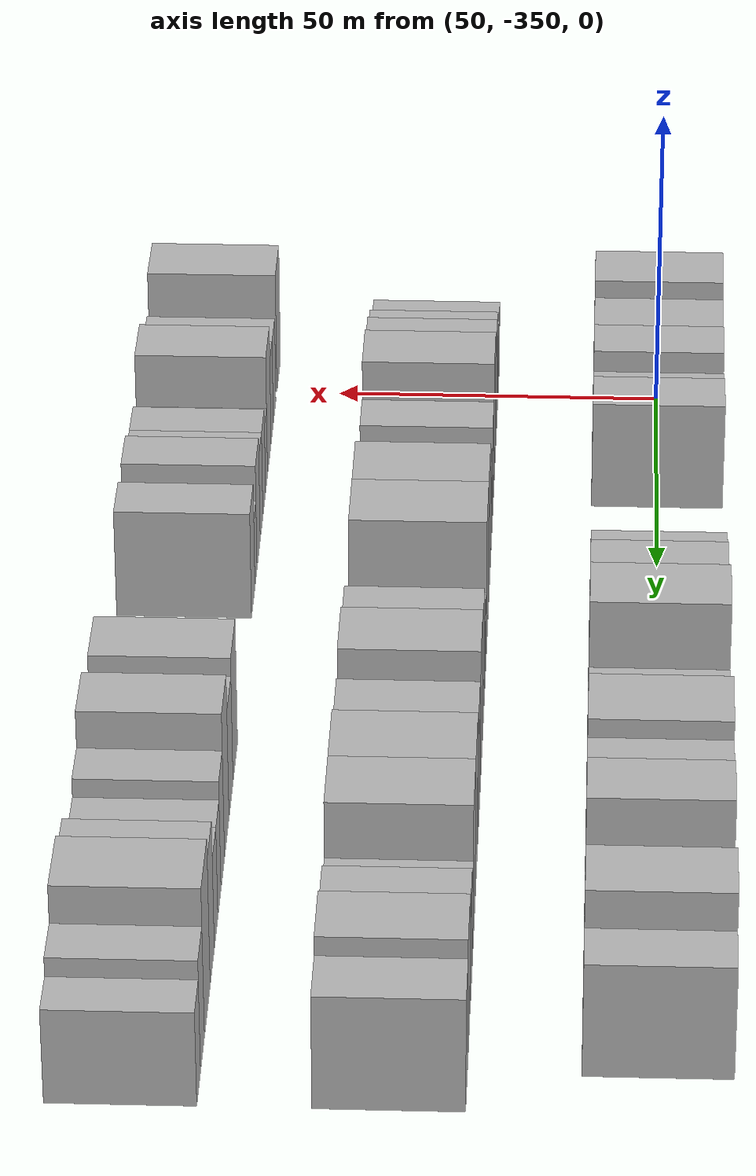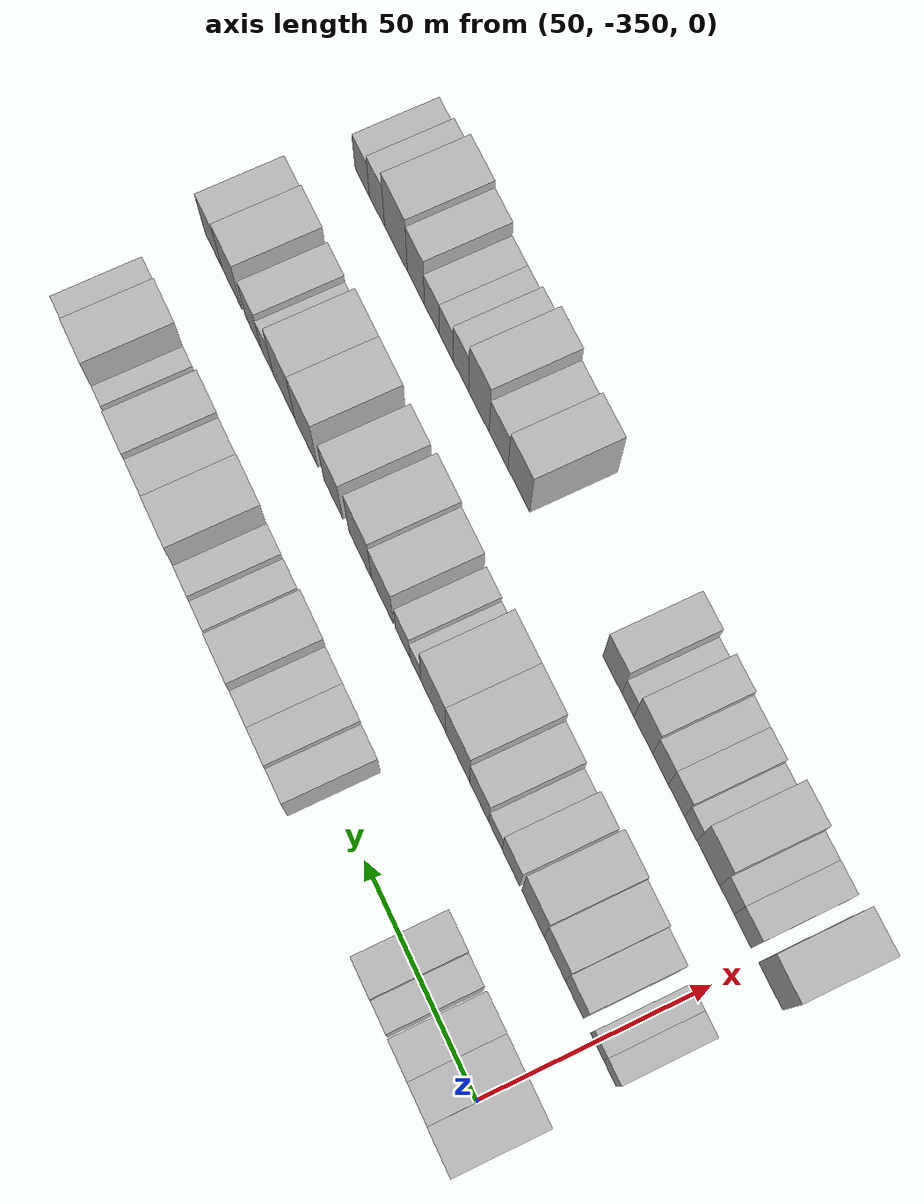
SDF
<sdf version="1.6">
 <world name="default">
  <model name="building_1">
   <static>1</static>
   <pose>50.0000 -355.1030 0 0.000000 0.000000 0.000000</pose>
   <link name="link">
    <pose>0 0 10.50 0 0 0</pose>
    <collision name="collision"><geometry><box><size>20.0000 9.7940 21.0000</size></box></geometry></collision>
    <visual name="visual">
     <cast_shadows>0</cast_shadows>
     <geometry><box><size>20.0000 9.7940 21.0000</size></box></geometry>
     <material>
      <script>
       <uri>model://HANNAS_wall/materials/scripts</uri>
       <uri>model://HANNAS_wall/materials/textures</uri>
       <name>vrc/HANNAS_wall</name>
      </script>
     </material>
    </visual>
   </link>
  </model>
  <model name="building_2">
   <static>1</static>
   <pose>50.0000 -345.9397 0 0.000000 0.000000 0.000000</pose>
   <link name="link">
    <pose>0 0 9.00 0 0 0</pose>
    <collision name="collision"><geometry><box><size>20.0000 8.5325 18.0000</size></box></geometry></collision>
    <visual name="visual">
     <cast_shadows>0</cast_shadows>
     <geometry><box><size>20.0000 8.5325 18.0000</size></box></geometry>
     <material>
      <script>
       <uri>model://HANNAS_wall/materials/scripts</uri>
       <uri>model://HANNAS_wall/materials/textures</uri>
       <name>vrc/HANNAS_wall</name>
      </script>
     </material>
    </visual>
   </link>
  </model>
  <model name="building_3">
   <static>1</static>
   <pose>50.0000 -337.5042 0 0.000000 0.000000 0.000000</pose>
   <link name="link">
    <pose>0 0 9.00 0 0 0</pose>
    <collision name="collision"><geometry><box><size>20.0000 8.3385 18.0000</size></box></geometry></collision>
    <visual name="visual">
     <cast_shadows>0</cast_shadows>
     <geometry><box><size>20.0000 8.3385 18.0000</size></box></geometry>
     <material>
      <script>
       <uri>model://HANNAS_wall/materials/scripts</uri>
       <uri>model://HANNAS_wall/materials/textures</uri>
       <name>vrc/HANNAS_wall</name>
      </script>
     </material>
    </visual>
   </link>
  </model>
  <model name="building_4">
   <static>1</static>
   <pose>50.0000 -328.9671 0 0.000000 0.000000 0.000000</pose>
   <link name="link">
    <pose>0 0 7.50 0 0 0</pose>
    <collision name="collision"><geometry><box><size>20.0000 6.7357 15.0000</size></box></geometry></collision>
    <visual name="visual">
     <cast_shadows>0</cast_shadows>
     <geometry><box><size>20.0000 6.7357 15.0000</size></box></geometry>
     <material>
      <script>
       <uri>model://HANNAS_wall/materials/scripts</uri>
       <uri>model://HANNAS_wall/materials/textures</uri>
       <name>vrc/HANNAS_wall</name>
      </script>
     </material>
    </visual>
   </link>
  </model>
  <model name="building_5">
   <static>1</static>
   <pose>50.0000 -321.3476 0 0.000000 0.000000 0.000000</pose>
   <link name="link">
    <pose>0 0 9.00 0 0 0</pose>
    <collision name="collision"><geometry><box><size>20.0000 8.5032 18.0000</size></box></geometry></collision>
    <visual name="visual">
     <cast_shadows>0</cast_shadows>
     <geometry><box><size>20.0000 8.5032 18.0000</size></box></geometry>
     <material>
      <script>
       <uri>model://HANNAS_wall/materials/scripts</uri>
       <uri>model://HANNAS_wall/materials/textures</uri>
       <name>vrc/HANNAS_wall</name>
      </script>
     </material>
    </visual>
   </link>
  </model>
  <model name="building_6">
   <static>1</static>
   <pose>50.0000 -281.8934 0 0.000000 0.000000 0.000000</pose>
   <link name="link">
    <pose>0 0 7.50 0 0 0</pose>
    <collision name="collision"><geometry><box><size>20.0000 7.4684 15.0000</size></box></geometry></collision>
    <visual name="visual">
     <cast_shadows>0</cast_shadows>
     <geometry><box><size>20.0000 7.4684 15.0000</size></box></geometry>
     <material>
      <script>
       <uri>model://HANNAS_wall/materials/scripts</uri>
       <uri>model://HANNAS_wall/materials/textures</uri>
       <name>vrc/HANNAS_wall</name>
      </script>
     </material>
    </visual>
   </link>
  </model>
  <model name="building_7">
   <static>1</static>
   <pose>50.0000 -274.1285 0 0.000000 0.000000 0.000000</pose>
   <link name="link">
    <pose>0 0 9.00 0 0 0</pose>
    <collision name="collision"><geometry><box><size>20.0000 8.0615 18.0000</size></box></geometry></collision>
    <visual name="visual">
     <cast_shadows>0</cast_shadows>
     <geometry><box><size>20.0000 8.0615 18.0000</size></box></geometry>
     <material>
      <script>
       <uri>model://HANNAS_wall/materials/scripts</uri>
       <uri>model://HANNAS_wall/materials/textures</uri>
       <name>vrc/HANNAS_wall</name>
      </script>
     </material>
    </visual>
   </link>
  </model>
  <model name="building_8">
   <static>1</static>
   <pose>50.0000 -266.1662 0 0.000000 0.000000 0.000000</pose>
   <link name="link">
    <pose>0 0 9.00 0 0 0</pose>
    <collision name="collision"><geometry><box><size>20.0000 7.8629 18.0000</size></box></geometry></collision>
    <visual name="visual">
     <cast_shadows>0</cast_shadows>
     <geometry><box><size>20.0000 7.8629 18.0000</size></box></geometry>
     <material>
      <script>
       <uri>model://HANNAS_wall/materials/scripts</uri>
       <uri>model://HANNAS_wall/materials/textures</uri>
       <name>vrc/HANNAS_wall</name>
      </script>
     </material>
    </visual>
   </link>
  </model>
  <model name="building_9">
   <static>1</static>
   <pose>50.0000 -256.8970 0 0.000000 0.000000 0.000000</pose>
   <link name="link">
    <pose>0 0 12.00 0 0 0</pose>
    <collision name="collision"><geometry><box><size>20.0000 10.6755 24.0000</size></box></geometry></collision>
    <visual name="visual">
     <cast_shadows>0</cast_shadows>
     <geometry><box><size>20.0000 10.6755 24.0000</size></box></geometry>
     <material>
      <script>
       <uri>model://HANNAS_wall/materials/scripts</uri>
       <uri>model://HANNAS_wall/materials/textures</uri>
       <name>vrc/HANNAS_wall</name>
      </script>
     </material>
    </visual>
   </link>
  </model>
  <model name="building_10">
   <static>1</static>
   <pose>50.0000 -245.2626 0 0.000000 0.000000 0.000000</pose>
   <link name="link">
    <pose>0 0 7.50 0 0 0</pose>
    <collision name="collision"><geometry><box><size>20.0000 6.5934 15.0000</size></box></geometry></collision>
    <visual name="visual">
     <cast_shadows>0</cast_shadows>
     <geometry><box><size>20.0000 6.5934 15.0000</size></box></geometry>
     <material>
      <script>
       <uri>model://HANNAS_wall/materials/scripts</uri>
       <uri>model://HANNAS_wall/materials/textures</uri>
       <name>vrc/HANNAS_wall</name>
      </script>
     </material>
    </visual>
   </link>
  </model>
  <model name="building_11">
   <static>1</static>
   <pose>50.0000 -237.5279 0 0.000000 0.000000 0.000000</pose>
   <link name="link">
    <pose>0 0 7.50 0 0 0</pose>
    <collision name="collision"><geometry><box><size>20.0000 6.8759 15.0000</size></box></geometry></collision>
    <visual name="visual">
     <cast_shadows>0</cast_shadows>
     <geometry><box><size>20.0000 6.8759 15.0000</size></box></geometry>
     <material>
      <script>
       <uri>model://HANNAS_wall/materials/scripts</uri>
       <uri>model://HANNAS_wall/materials/textures</uri>
       <name>vrc/HANNAS_wall</name>
      </script>
     </material>
    </visual>
   </link>
  </model>
  <model name="building_12">
   <static>1</static>
   <pose>50.0000 -227.3818 0 0.000000 0.000000 0.000000</pose>
   <link name="link">
    <pose>0 0 12.00 0 0 0</pose>
    <collision name="collision"><geometry><box><size>20.0000 11.4164 24.0000</size></box></geometry></collision>
    <visual name="visual">
     <cast_shadows>0</cast_shadows>
     <geometry><box><size>20.0000 11.4164 24.0000</size></box></geometry>
     <material>
      <script>
       <uri>model://HANNAS_wall/materials/scripts</uri>
       <uri>model://HANNAS_wall/materials/textures</uri>
       <name>vrc/HANNAS_wall</name>
      </script>
     </material>
    </visual>
   </link>
  </model>
  <model name="building_13">
   <static>1</static>
   <pose>50.0000 -216.9824 0 0.000000 0.000000 0.000000</pose>
   <link name="link">
    <pose>0 0 10.50 0 0 0</pose>
    <collision name="collision"><geometry><box><size>20.0000 9.3823 21.0000</size></box></geometry></collision>
    <visual name="visual">
     <cast_shadows>0</cast_shadows>
     <geometry><box><size>20.0000 9.3823 21.0000</size></box></geometry>
     <material>
      <script>
       <uri>model://HANNAS_wall/materials/scripts</uri>
       <uri>model://HANNAS_wall/materials/textures</uri>
       <name>vrc/HANNAS_wall</name>
      </script>
     </material>
    </visual>
   </link>
  </model>
  <model name="building_14">
   <static>1</static>
   <pose>50.0000 -207.4334 0 0.000000 0.000000 0.000000</pose>
   <link name="link">
    <pose>0 0 12.00 0 0 0</pose>
    <collision name="collision"><geometry><box><size>20.0000 9.7157 24.0000</size></box></geometry></collision>
    <visual name="visual">
     <cast_shadows>0</cast_shadows>
     <geometry><box><size>20.0000 9.7157 24.0000</size></box></geometry>
     <material>
      <script>
       <uri>model://HANNAS_wall/materials/scripts</uri>
       <uri>model://HANNAS_wall/materials/textures</uri>
       <name>vrc/HANNAS_wall</name>
      </script>
     </material>
    </visual>
   </link>
  </model>
  <model name="building_15">
   <static>1</static>
   <pose>50.0000 -200.0205 0 0.000000 0.000000 0.000000</pose>
   <link name="link">
    <pose>0 0 6.00 0 0 0</pose>
    <collision name="collision"><geometry><box><size>20.0000 5.1102 12.0000</size></box></geometry></collision>
    <visual name="visual">
     <cast_shadows>0</cast_shadows>
     <geometry><box><size>20.0000 5.1102 12.0000</size></box></geometry>
     <material>
      <script>
       <uri>model://HANNAS_wall/materials/scripts</uri>
       <uri>model://HANNAS_wall/materials/textures</uri>
       <name>vrc/HANNAS_wall</name>
      </script>
     </material>
    </visual>
   </link>
  </model>
  <model name="building_16">
   <static>1</static>
   <pose>50.0000 -194.0654 0 0.000000 0.000000 0.000000</pose>
   <link name="link">
    <pose>0 0 6.00 0 0 0</pose>
    <collision name="collision"><geometry><box><size>20.0000 4.8000 12.0000</size></box></geometry></collision>
    <visual name="visual">
     <cast_shadows>0</cast_shadows>
     <geometry><box><size>20.0000 4.8000 12.0000</size></box></geometry>
     <material>
      <script>
       <uri>model://HANNAS_wall/materials/scripts</uri>
       <uri>model://HANNAS_wall/materials/textures</uri>
       <name>vrc/HANNAS_wall</name>
      </script>
     </material>
    </visual>
   </link>
  </model>
  <model name="building_17">
   <static>1</static>
   <pose>50.0000 -186.4469 0 0.000000 0.000000 0.000000</pose>
   <link name="link">
    <pose>0 0 12.00 0 0 0</pose>
    <collision name="collision"><geometry><box><size>20.0000 10.4369 24.0000</size></box></geometry></collision>
    <visual name="visual">
     <cast_shadows>0</cast_shadows>
     <geometry><box><size>20.0000 10.4369 24.0000</size></box></geometry>
     <material>
      <script>
       <uri>model://HANNAS_wall/materials/scripts</uri>
       <uri>model://HANNAS_wall/materials/textures</uri>
       <name>vrc/HANNAS_wall</name>
      </script>
     </material>
    </visual>
   </link>
  </model>
  <model name="building_18">
   <static>1</static>
   <pose>50.0000 -177.1281 0 0.000000 0.000000 0.000000</pose>
   <link name="link">
    <pose>0 0 9.00 0 0 0</pose>
    <collision name="collision"><geometry><box><size>20.0000 8.2006 18.0000</size></box></geometry></collision>
    <visual name="visual">
     <cast_shadows>0</cast_shadows>
     <geometry><box><size>20.0000 8.2006 18.0000</size></box></geometry>
     <material>
      <script>
       <uri>model://HANNAS_wall/materials/scripts</uri>
       <uri>model://HANNAS_wall/materials/textures</uri>
       <name>vrc/HANNAS_wall</name>
      </script>
     </material>
    </visual>
   </link>
  </model>
  <model name="building_81">
   <static>1</static>
   <pose>85.0000 -356.2820 0 0.000000 0.000000 0.000000</pose>
   <link name="link">
    <pose>0 0 6.00 0 0 0</pose>
    <collision name="collision"><geometry><box><size>20.0000 5.4359 12.0000</size></box></geometry></collision>
    <visual name="visual">
     <cast_shadows>0</cast_shadows>
     <geometry><box><size>20.0000 5.4359 12.0000</size></box></geometry>
     <material>
      <script>
       <uri>model://HANNAS_wall/materials/scripts</uri>
       <uri>model://HANNAS_wall/materials/textures</uri>
       <name>vrc/HANNAS_wall</name>
      </script>
     </material>
    </visual>
   </link>
  </model>
  <model name="building_82">
   <static>1</static>
   <pose>85.0000 -350.8285 0 0.000000 0.000000 0.000000</pose>
   <link name="link">
    <pose>0 0 6.00 0 0 0</pose>
    <collision name="collision"><geometry><box><size>20.0000 5.4711 12.0000</size></box></geometry></collision>
    <visual name="visual">
     <cast_shadows>0</cast_shadows>
     <geometry><box><size>20.0000 5.4711 12.0000</size></box></geometry>
     <material>
      <script>
       <uri>model://HANNAS_wall/materials/scripts</uri>
       <uri>model://HANNAS_wall/materials/textures</uri>
       <name>vrc/HANNAS_wall</name>
      </script>
     </material>
    </visual>
   </link>
  </model>
  <model name="building_83">
   <static>1</static>
   <pose>85.0000 -341.2318 0 0.000000 0.000000 0.000000</pose>
   <link name="link">
    <pose>0 0 9.00 0 0 0</pose>
    <collision name="collision"><geometry><box><size>20.0000 7.7224 18.0000</size></box></geometry></collision>
    <visual name="visual">
     <cast_shadows>0</cast_shadows>
     <geometry><box><size>20.0000 7.7224 18.0000</size></box></geometry>
     <material>
      <script>
       <uri>model://HANNAS_wall/materials/scripts</uri>
       <uri>model://HANNAS_wall/materials/textures</uri>
       <name>vrc/HANNAS_wall</name>
      </script>
     </material>
    </visual>
   </link>
  </model>
  <model name="building_84">
   <static>1</static>
   <pose>85.0000 -332.7279 0 0.000000 0.000000 0.000000</pose>
   <link name="link">
    <pose>0 0 10.50 0 0 0</pose>
    <collision name="collision"><geometry><box><size>20.0000 9.2854 21.0000</size></box></geometry></collision>
    <visual name="visual">
     <cast_shadows>0</cast_shadows>
     <geometry><box><size>20.0000 9.2854 21.0000</size></box></geometry>
     <material>
      <script>
       <uri>model://HANNAS_wall/materials/scripts</uri>
       <uri>model://HANNAS_wall/materials/textures</uri>
       <name>vrc/HANNAS_wall</name>
      </script>
     </material>
    </visual>
   </link>
  </model>
  <model name="building_85">
   <static>1</static>
   <pose>85.0000 -323.1978 0 0.000000 0.000000 0.000000</pose>
   <link name="link">
    <pose>0 0 12.00 0 0 0</pose>
    <collision name="collision"><geometry><box><size>20.0000 9.7748 24.0000</size></box></geometry></collision>
    <visual name="visual">
     <cast_shadows>0</cast_shadows>
     <geometry><box><size>20.0000 9.7748 24.0000</size></box></geometry>
     <material>
      <script>
       <uri>model://HANNAS_wall/materials/scripts</uri>
       <uri>model://HANNAS_wall/materials/textures</uri>
       <name>vrc/HANNAS_wall</name>
      </script>
     </material>
    </visual>
   </link>
  </model>
  <model name="building_86">
   <static>1</static>
   <pose>85.0000 -313.4139 0 0.000000 0.000000 0.000000</pose>
   <link name="link">
    <pose>0 0 9.00 0 0 0</pose>
    <collision name="collision"><geometry><box><size>20.0000 7.7929 18.0000</size></box></geometry></collision>
    <visual name="visual">
     <cast_shadows>0</cast_shadows>
     <geometry><box><size>20.0000 7.7929 18.0000</size></box></geometry>
     <material>
      <script>
       <uri>model://HANNAS_wall/materials/scripts</uri>
       <uri>model://HANNAS_wall/materials/textures</uri>
       <name>vrc/HANNAS_wall</name>
      </script>
     </material>
    </visual>
   </link>
  </model>
  <model name="building_87">
   <static>1</static>
   <pose>85.0000 -306.5376 0 0.000000 0.000000 0.000000</pose>
   <link name="link">
    <pose>0 0 6.00 0 0 0</pose>
    <collision name="collision"><geometry><box><size>20.0000 5.9599 12.0000</size></box></geometry></collision>
    <visual name="visual">
     <cast_shadows>0</cast_shadows>
     <geometry><box><size>20.0000 5.9599 12.0000</size></box></geometry>
     <material>
      <script>
       <uri>model://HANNAS_wall/materials/scripts</uri>
       <uri>model://HANNAS_wall/materials/textures</uri>
       <name>vrc/HANNAS_wall</name>
      </script>
     </material>
    </visual>
   </link>
  </model>
  <model name="building_88">
   <static>1</static>
   <pose>85.0000 -299.1780 0 0.000000 0.000000 0.000000</pose>
   <link name="link">
    <pose>0 0 9.00 0 0 0</pose>
    <collision name="collision"><geometry><box><size>20.0000 8.7593 18.0000</size></box></geometry></collision>
    <visual name="visual">
     <cast_shadows>0</cast_shadows>
     <geometry><box><size>20.0000 8.7593 18.0000</size></box></geometry>
     <material>
      <script>
       <uri>model://HANNAS_wall/materials/scripts</uri>
       <uri>model://HANNAS_wall/materials/textures</uri>
       <name>vrc/HANNAS_wall</name>
      </script>
     </material>
    </visual>
   </link>
  </model>
  <model name="building_89">
   <static>1</static>
   <pose>85.0000 -289.3631 0 0.000000 0.000000 0.000000</pose>
   <link name="link">
    <pose>0 0 12.00 0 0 0</pose>
    <collision name="collision"><geometry><box><size>20.0000 10.8705 24.0000</size></box></geometry></collision>
    <visual name="visual">
     <cast_shadows>0</cast_shadows>
     <geometry><box><size>20.0000 10.8705 24.0000</size></box></geometry>
     <material>
      <script>
       <uri>model://HANNAS_wall/materials/scripts</uri>
       <uri>model://HANNAS_wall/materials/textures</uri>
       <name>vrc/HANNAS_wall</name>
      </script>
     </material>
    </visual>
   </link>
  </model>
  <model name="building_90">
   <static>1</static>
   <pose>85.0000 -278.1805 0 0.000000 0.000000 0.000000</pose>
   <link name="link">
    <pose>0 0 12.00 0 0 0</pose>
    <collision name="collision"><geometry><box><size>20.0000 11.4947 24.0000</size></box></geometry></collision>
    <visual name="visual">
     <cast_shadows>0</cast_shadows>
     <geometry><box><size>20.0000 11.4947 24.0000</size></box></geometry>
     <material>
      <script>
       <uri>model://HANNAS_wall/materials/scripts</uri>
       <uri>model://HANNAS_wall/materials/textures</uri>
       <name>vrc/HANNAS_wall</name>
      </script>
     </material>
    </visual>
   </link>
  </model>
  <model name="building_91">
   <static>1</static>
   <pose>85.0000 -269.8425 0 0.000000 0.000000 0.000000</pose>
   <link name="link">
    <pose>0 0 6.00 0 0 0</pose>
    <collision name="collision"><geometry><box><size>20.0000 5.1814 12.0000</size></box></geometry></collision>
    <visual name="visual">
     <cast_shadows>0</cast_shadows>
     <geometry><box><size>20.0000 5.1814 12.0000</size></box></geometry>
     <material>
      <script>
       <uri>model://HANNAS_wall/materials/scripts</uri>
       <uri>model://HANNAS_wall/materials/textures</uri>
       <name>vrc/HANNAS_wall</name>
      </script>
     </material>
    </visual>
   </link>
  </model>
  <model name="building_92">
   <static>1</static>
   <pose>85.0000 -263.8322 0 0.000000 0.000000 0.000000</pose>
   <link name="link">
    <pose>0 0 7.50 0 0 0</pose>
    <collision name="collision"><geometry><box><size>20.0000 6.8390 15.0000</size></box></geometry></collision>
    <visual name="visual">
     <cast_shadows>0</cast_shadows>
     <geometry><box><size>20.0000 6.8390 15.0000</size></box></geometry>
     <material>
      <script>
       <uri>model://HANNAS_wall/materials/scripts</uri>
       <uri>model://HANNAS_wall/materials/textures</uri>
       <name>vrc/HANNAS_wall</name>
      </script>
     </material>
    </visual>
   </link>
  </model>
  <model name="building_93">
   <static>1</static>
   <pose>85.0000 -254.2164 0 0.000000 0.000000 0.000000</pose>
   <link name="link">
    <pose>0 0 10.50 0 0 0</pose>
    <collision name="collision"><geometry><box><size>20.0000 10.3926 21.0000</size></box></geometry></collision>
    <visual name="visual">
     <cast_shadows>0</cast_shadows>
     <geometry><box><size>20.0000 10.3926 21.0000</size></box></geometry>
     <material>
      <script>
       <uri>model://HANNAS_wall/materials/scripts</uri>
       <uri>model://HANNAS_wall/materials/textures</uri>
       <name>vrc/HANNAS_wall</name>
      </script>
     </material>
    </visual>
   </link>
  </model>
  <model name="building_94">
   <static>1</static>
   <pose>85.0000 -243.5573 0 0.000000 0.000000 0.000000</pose>
   <link name="link">
    <pose>0 0 12.00 0 0 0</pose>
    <collision name="collision"><geometry><box><size>20.0000 10.9257 24.0000</size></box></geometry></collision>
    <visual name="visual">
     <cast_shadows>0</cast_shadows>
     <geometry><box><size>20.0000 10.9257 24.0000</size></box></geometry>
     <material>
      <script>
       <uri>model://HANNAS_wall/materials/scripts</uri>
       <uri>model://HANNAS_wall/materials/textures</uri>
       <name>vrc/HANNAS_wall</name>
      </script>
     </material>
    </visual>
   </link>
  </model>
  <model name="building_95">
   <static>1</static>
   <pose>85.0000 -230.4207 0 0.000000 0.000000 0.000000</pose>
   <link name="link">
    <pose>0 0 10.50 0 0 0</pose>
    <collision name="collision"><geometry><box><size>20.0000 9.3475 21.0000</size></box></geometry></collision>
    <visual name="visual">
     <cast_shadows>0</cast_shadows>
     <geometry><box><size>20.0000 9.3475 21.0000</size></box></geometry>
     <material>
      <script>
       <uri>model://HANNAS_wall/materials/scripts</uri>
       <uri>model://HANNAS_wall/materials/textures</uri>
       <name>vrc/HANNAS_wall</name>
      </script>
     </material>
    </visual>
   </link>
  </model>
  <model name="building_96">
   <static>1</static>
   <pose>85.0000 -217.0927 0 0.000000 0.000000 0.000000</pose>
   <link name="link">
    <pose>0 0 12.00 0 0 0</pose>
    <collision name="collision"><geometry><box><size>20.0000 11.3086 24.0000</size></box></geometry></collision>
    <visual name="visual">
     <cast_shadows>0</cast_shadows>
     <geometry><box><size>20.0000 11.3086 24.0000</size></box></geometry>
     <material>
      <script>
       <uri>model://HANNAS_wall/materials/scripts</uri>
       <uri>model://HANNAS_wall/materials/textures</uri>
       <name>vrc/HANNAS_wall</name>
      </script>
     </material>
    </visual>
   </link>
  </model>
  <model name="building_97">
   <static>1</static>
   <pose>85.0000 -205.8536 0 0.000000 0.000000 0.000000</pose>
   <link name="link">
    <pose>0 0 12.00 0 0 0</pose>
    <collision name="collision"><geometry><box><size>20.0000 11.1697 24.0000</size></box></geometry></collision>
    <visual name="visual">
     <cast_shadows>0</cast_shadows>
     <geometry><box><size>20.0000 11.1697 24.0000</size></box></geometry>
     <material>
      <script>
       <uri>model://HANNAS_wall/materials/scripts</uri>
       <uri>model://HANNAS_wall/materials/textures</uri>
       <name>vrc/HANNAS_wall</name>
      </script>
     </material>
    </visual>
   </link>
  </model>
  <model name="building_98">
   <static>1</static>
   <pose>85.0000 -197.2558 0 0.000000 0.000000 0.000000</pose>
   <link name="link">
    <pose>0 0 7.50 0 0 0</pose>
    <collision name="collision"><geometry><box><size>20.0000 6.0258 15.0000</size></box></geometry></collision>
    <visual name="visual">
     <cast_shadows>0</cast_shadows>
     <geometry><box><size>20.0000 6.0258 15.0000</size></box></geometry>
     <material>
      <script>
       <uri>model://HANNAS_wall/materials/scripts</uri>
       <uri>model://HANNAS_wall/materials/textures</uri>
       <name>vrc/HANNAS_wall</name>
      </script>
     </material>
    </visual>
   </link>
  </model>
  <model name="building_99">
   <static>1</static>
   <pose>85.0000 -190.2075 0 0.000000 0.000000 0.000000</pose>
   <link name="link">
    <pose>0 0 9.00 0 0 0</pose>
    <collision name="collision"><geometry><box><size>20.0000 8.0709 18.0000</size></box></geometry></collision>
    <visual name="visual">
     <cast_shadows>0</cast_shadows>
     <geometry><box><size>20.0000 8.0709 18.0000</size></box></geometry>
     <material>
      <script>
       <uri>model://HANNAS_wall/materials/scripts</uri>
       <uri>model://HANNAS_wall/materials/textures</uri>
       <name>vrc/HANNAS_wall</name>
      </script>
     </material>
    </visual>
   </link>
  </model>
  <model name="building_100">
   <static>1</static>
   <pose>85.0000 -179.0098 0 0.000000 0.000000 0.000000</pose>
   <link name="link">
    <pose>0 0 10.50 0 0 0</pose>
    <collision name="collision"><geometry><box><size>20.0000 10.3245 21.0000</size></box></geometry></collision>
    <visual name="visual">
     <cast_shadows>0</cast_shadows>
     <geometry><box><size>20.0000 10.3245 21.0000</size></box></geometry>
     <material>
      <script>
       <uri>model://HANNAS_wall/materials/scripts</uri>
       <uri>model://HANNAS_wall/materials/textures</uri>
       <name>vrc/HANNAS_wall</name>
      </script>
     </material>
    </visual>
   </link>
  </model>
  <model name="building_101">
   <static>1</static>
   <pose>85.0000 -169.3495 0 0.000000 0.000000 0.000000</pose>
   <link name="link">
    <pose>0 0 9.00 0 0 0</pose>
    <collision name="collision"><geometry><box><size>20.0000 8.9962 18.0000</size></box></geometry></collision>
    <visual name="visual">
     <cast_shadows>0</cast_shadows>
     <geometry><box><size>20.0000 8.9962 18.0000</size></box></geometry>
     <material>
      <script>
       <uri>model://HANNAS_wall/materials/scripts</uri>
       <uri>model://HANNAS_wall/materials/textures</uri>
       <name>vrc/HANNAS_wall</name>
      </script>
     </material>
    </visual>
   </link>
  </model>
  <model name="building_163">
   <static>1</static>
   <pose>120.0000 -355.0394 0 0.000000 0.000000 0.000000</pose>
   <link name="link">
    <pose>0 0 10.50 0 0 0</pose>
    <collision name="collision"><geometry><box><size>20.0000 9.9211 21.0000</size></box></geometry></collision>
    <visual name="visual">
     <cast_shadows>0</cast_shadows>
     <geometry><box><size>20.0000 9.9211 21.0000</size></box></geometry>
     <material>
      <script>
       <uri>model://HANNAS_wall/materials/scripts</uri>
       <uri>model://HANNAS_wall/materials/textures</uri>
       <name>vrc/HANNAS_wall</name>
      </script>
     </material>
    </visual>
   </link>
  </model>
  <model name="building_164">
   <static>1</static>
   <pose>120.0000 -343.5110 0 0.000000 0.000000 0.000000</pose>
   <link name="link">
    <pose>0 0 7.50 0 0 0</pose>
    <collision name="collision"><geometry><box><size>20.0000 7.1358 15.0000</size></box></geometry></collision>
    <visual name="visual">
     <cast_shadows>0</cast_shadows>
     <geometry><box><size>20.0000 7.1358 15.0000</size></box></geometry>
     <material>
      <script>
       <uri>model://HANNAS_wall/materials/scripts</uri>
       <uri>model://HANNAS_wall/materials/textures</uri>
       <name>vrc/HANNAS_wall</name>
      </script>
     </material>
    </visual>
   </link>
  </model>
  <model name="building_165">
   <static>1</static>
   <pose>120.0000 -336.9144 0 0.000000 0.000000 0.000000</pose>
   <link name="link">
    <pose>0 0 7.50 0 0 0</pose>
    <collision name="collision"><geometry><box><size>20.0000 6.0573 15.0000</size></box></geometry></collision>
    <visual name="visual">
     <cast_shadows>0</cast_shadows>
     <geometry><box><size>20.0000 6.0573 15.0000</size></box></geometry>
     <material>
      <script>
       <uri>model://HANNAS_wall/materials/scripts</uri>
       <uri>model://HANNAS_wall/materials/textures</uri>
       <name>vrc/HANNAS_wall</name>
      </script>
     </material>
    </visual>
   </link>
  </model>
  <model name="building_166">
   <static>1</static>
   <pose>120.0000 -329.0987 0 0.000000 0.000000 0.000000</pose>
   <link name="link">
    <pose>0 0 10.50 0 0 0</pose>
    <collision name="collision"><geometry><box><size>20.0000 9.5741 21.0000</size></box></geometry></collision>
    <visual name="visual">
     <cast_shadows>0</cast_shadows>
     <geometry><box><size>20.0000 9.5741 21.0000</size></box></geometry>
     <material>
      <script>
       <uri>model://HANNAS_wall/materials/scripts</uri>
       <uri>model://HANNAS_wall/materials/textures</uri>
       <name>vrc/HANNAS_wall</name>
      </script>
     </material>
    </visual>
   </link>
  </model>
  <model name="building_167">
   <static>1</static>
   <pose>120.0000 -321.6745 0 0.000000 0.000000 0.000000</pose>
   <link name="link">
    <pose>0 0 6.00 0 0 0</pose>
    <collision name="collision"><geometry><box><size>20.0000 5.2742 12.0000</size></box></geometry></collision>
    <visual name="visual">
     <cast_shadows>0</cast_shadows>
     <geometry><box><size>20.0000 5.2742 12.0000</size></box></geometry>
     <material>
      <script>
       <uri>model://HANNAS_wall/materials/scripts</uri>
       <uri>model://HANNAS_wall/materials/textures</uri>
       <name>vrc/HANNAS_wall</name>
      </script>
     </material>
    </visual>
   </link>
  </model>
  <model name="building_168">
   <static>1</static>
   <pose>120.0000 -315.5356 0 0.000000 0.000000 0.000000</pose>
   <link name="link">
    <pose>0 0 7.50 0 0 0</pose>
    <collision name="collision"><geometry><box><size>20.0000 7.0036 15.0000</size></box></geometry></collision>
    <visual name="visual">
     <cast_shadows>0</cast_shadows>
     <geometry><box><size>20.0000 7.0036 15.0000</size></box></geometry>
     <material>
      <script>
       <uri>model://HANNAS_wall/materials/scripts</uri>
       <uri>model://HANNAS_wall/materials/textures</uri>
       <name>vrc/HANNAS_wall</name>
      </script>
     </material>
    </visual>
   </link>
  </model>
  <model name="building_169">
   <static>1</static>
   <pose>120.0000 -308.6230 0 0.000000 0.000000 0.000000</pose>
   <link name="link">
    <pose>0 0 7.50 0 0 0</pose>
    <collision name="collision"><geometry><box><size>20.0000 6.8217 15.0000</size></box></geometry></collision>
    <visual name="visual">
     <cast_shadows>0</cast_shadows>
     <geometry><box><size>20.0000 6.8217 15.0000</size></box></geometry>
     <material>
      <script>
       <uri>model://HANNAS_wall/materials/scripts</uri>
       <uri>model://HANNAS_wall/materials/textures</uri>
       <name>vrc/HANNAS_wall</name>
      </script>
     </material>
    </visual>
   </link>
  </model>
  <model name="building_170">
   <static>1</static>
   <pose>120.0000 -301.1414 0 0.000000 0.000000 0.000000</pose>
   <link name="link">
    <pose>0 0 9.00 0 0 0</pose>
    <collision name="collision"><geometry><box><size>20.0000 8.1416 18.0000</size></box></geometry></collision>
    <visual name="visual">
     <cast_shadows>0</cast_shadows>
     <geometry><box><size>20.0000 8.1416 18.0000</size></box></geometry>
     <material>
      <script>
       <uri>model://HANNAS_wall/materials/scripts</uri>
       <uri>model://HANNAS_wall/materials/textures</uri>
       <name>vrc/HANNAS_wall</name>
      </script>
     </material>
    </visual>
   </link>
  </model>
  <model name="building_171">
   <static>1</static>
   <pose>120.0000 -294.4355 0 0.000000 0.000000 0.000000</pose>
   <link name="link">
    <pose>0 0 6.00 0 0 0</pose>
    <collision name="collision"><geometry><box><size>20.0000 5.2703 12.0000</size></box></geometry></collision>
    <visual name="visual">
     <cast_shadows>0</cast_shadows>
     <geometry><box><size>20.0000 5.2703 12.0000</size></box></geometry>
     <material>
      <script>
       <uri>model://HANNAS_wall/materials/scripts</uri>
       <uri>model://HANNAS_wall/materials/textures</uri>
       <name>vrc/HANNAS_wall</name>
      </script>
     </material>
    </visual>
   </link>
  </model>
  <model name="building_172">
   <static>1</static>
   <pose>120.0000 -287.5603 0 0.000000 0.000000 0.000000</pose>
   <link name="link">
    <pose>0 0 9.00 0 0 0</pose>
    <collision name="collision"><geometry><box><size>20.0000 8.4799 18.0000</size></box></geometry></collision>
    <visual name="visual">
     <cast_shadows>0</cast_shadows>
     <geometry><box><size>20.0000 8.4799 18.0000</size></box></geometry>
     <material>
      <script>
       <uri>model://HANNAS_wall/materials/scripts</uri>
       <uri>model://HANNAS_wall/materials/textures</uri>
       <name>vrc/HANNAS_wall</name>
      </script>
     </material>
    </visual>
   </link>
  </model>
  <model name="building_173">
   <static>1</static>
   <pose>120.0000 -244.9335 0 0.000000 0.000000 0.000000</pose>
   <link name="link">
    <pose>0 0 10.50 0 0 0</pose>
    <collision name="collision"><geometry><box><size>20.0000 10.2579 21.0000</size></box></geometry></collision>
    <visual name="visual">
     <cast_shadows>0</cast_shadows>
     <geometry><box><size>20.0000 10.2579 21.0000</size></box></geometry>
     <material>
      <script>
       <uri>model://HANNAS_wall/materials/scripts</uri>
       <uri>model://HANNAS_wall/materials/textures</uri>
       <name>vrc/HANNAS_wall</name>
      </script>
     </material>
    </visual>
   </link>
  </model>
  <model name="building_174">
   <static>1</static>
   <pose>120.0000 -235.3767 0 0.000000 0.000000 0.000000</pose>
   <link name="link">
    <pose>0 0 9.00 0 0 0</pose>
    <collision name="collision"><geometry><box><size>20.0000 8.8558 18.0000</size></box></geometry></collision>
    <visual name="visual">
     <cast_shadows>0</cast_shadows>
     <geometry><box><size>20.0000 8.8558 18.0000</size></box></geometry>
     <material>
      <script>
       <uri>model://HANNAS_wall/materials/scripts</uri>
       <uri>model://HANNAS_wall/materials/textures</uri>
       <name>vrc/HANNAS_wall</name>
      </script>
     </material>
    </visual>
   </link>
  </model>
  <model name="building_175">
   <static>1</static>
   <pose>120.0000 -226.0194 0 0.000000 0.000000 0.000000</pose>
   <link name="link">
    <pose>0 0 12.00 0 0 0</pose>
    <collision name="collision"><geometry><box><size>20.0000 9.8588 24.0000</size></box></geometry></collision>
    <visual name="visual">
     <cast_shadows>0</cast_shadows>
     <geometry><box><size>20.0000 9.8588 24.0000</size></box></geometry>
     <material>
      <script>
       <uri>model://HANNAS_wall/materials/scripts</uri>
       <uri>model://HANNAS_wall/materials/textures</uri>
       <name>vrc/HANNAS_wall</name>
      </script>
     </material>
    </visual>
   </link>
  </model>
  <model name="building_176">
   <static>1</static>
   <pose>120.0000 -217.2987 0 0.000000 0.000000 0.000000</pose>
   <link name="link">
    <pose>0 0 9.00 0 0 0</pose>
    <collision name="collision"><geometry><box><size>20.0000 7.5825 18.0000</size></box></geometry></collision>
    <visual name="visual">
     <cast_shadows>0</cast_shadows>
     <geometry><box><size>20.0000 7.5825 18.0000</size></box></geometry>
     <material>
      <script>
       <uri>model://HANNAS_wall/materials/scripts</uri>
       <uri>model://HANNAS_wall/materials/textures</uri>
       <name>vrc/HANNAS_wall</name>
      </script>
     </material>
    </visual>
   </link>
  </model>
  <model name="building_177">
   <static>1</static>
   <pose>120.0000 -210.2051 0 0.000000 0.000000 0.000000</pose>
   <link name="link">
    <pose>0 0 7.50 0 0 0</pose>
    <collision name="collision"><geometry><box><size>20.0000 6.6046 15.0000</size></box></geometry></collision>
    <visual name="visual">
     <cast_shadows>0</cast_shadows>
     <geometry><box><size>20.0000 6.6046 15.0000</size></box></geometry>
     <material>
      <script>
       <uri>model://HANNAS_wall/materials/scripts</uri>
       <uri>model://HANNAS_wall/materials/textures</uri>
       <name>vrc/HANNAS_wall</name>
      </script>
     </material>
    </visual>
   </link>
  </model>
  <model name="building_178">
   <static>1</static>
   <pose>120.0000 -203.2478 0 0.000000 0.000000 0.000000</pose>
   <link name="link">
    <pose>0 0 7.50 0 0 0</pose>
    <collision name="collision"><geometry><box><size>20.0000 7.3101 15.0000</size></box></geometry></collision>
    <visual name="visual">
     <cast_shadows>0</cast_shadows>
     <geometry><box><size>20.0000 7.3101 15.0000</size></box></geometry>
     <material>
      <script>
       <uri>model://HANNAS_wall/materials/scripts</uri>
       <uri>model://HANNAS_wall/materials/textures</uri>
       <name>vrc/HANNAS_wall</name>
      </script>
     </material>
    </visual>
   </link>
  </model>
  <model name="building_179">
   <static>1</static>
   <pose>120.0000 -195.3852 0 0.000000 0.000000 0.000000</pose>
   <link name="link">
    <pose>0 0 10.50 0 0 0</pose>
    <collision name="collision"><geometry><box><size>20.0000 8.4151 21.0000</size></box></geometry></collision>
    <visual name="visual">
     <cast_shadows>0</cast_shadows>
     <geometry><box><size>20.0000 8.4151 21.0000</size></box></geometry>
     <material>
      <script>
       <uri>model://HANNAS_wall/materials/scripts</uri>
       <uri>model://HANNAS_wall/materials/textures</uri>
       <name>vrc/HANNAS_wall</name>
      </script>
     </material>
    </visual>
   </link>
  </model>
  <model name="building_180">
   <static>1</static>
   <pose>120.0000 -185.4804 0 0.000000 0.000000 0.000000</pose>
   <link name="link">
    <pose>0 0 12.00 0 0 0</pose>
    <collision name="collision"><geometry><box><size>20.0000 11.3946 24.0000</size></box></geometry></collision>
    <visual name="visual">
     <cast_shadows>0</cast_shadows>
     <geometry><box><size>20.0000 11.3946 24.0000</size></box></geometry>
     <material>
      <script>
       <uri>model://HANNAS_wall/materials/scripts</uri>
       <uri>model://HANNAS_wall/materials/textures</uri>
       <name>vrc/HANNAS_wall</name>
      </script>
     </material>
    </visual>
   </link>
  </model>
  <model name="building_181">
   <static>1</static>
   <pose>120.0000 -175.9496 0 0.000000 0.000000 0.000000</pose>
   <link name="link">
    <pose>0 0 9.00 0 0 0</pose>
    <collision name="collision"><geometry><box><size>20.0000 7.6670 18.0000</size></box></geometry></collision>
    <visual name="visual">
     <cast_shadows>0</cast_shadows>
     <geometry><box><size>20.0000 7.6670 18.0000</size></box></geometry>
     <material>
      <script>
       <uri>model://HANNAS_wall/materials/scripts</uri>
       <uri>model://HANNAS_wall/materials/textures</uri>
       <name>vrc/HANNAS_wall</name>
      </script>
     </material>
    </visual>
   </link>
  </model>
  <model name="building_182">
   <static>1</static>
   <pose>120.0000 -168.4821 0 0.000000 0.000000 0.000000</pose>
   <link name="link">
    <pose>0 0 7.50 0 0 0</pose>
    <collision name="collision"><geometry><box><size>20.0000 7.2680 15.0000</size></box></geometry></collision>
    <visual name="visual">
     <cast_shadows>0</cast_shadows>
     <geometry><box><size>20.0000 7.2680 15.0000</size></box></geometry>
     <material>
      <script>
       <uri>model://HANNAS_wall/materials/scripts</uri>
       <uri>model://HANNAS_wall/materials/textures</uri>
       <name>vrc/HANNAS_wall</name>
      </script>
     </material>
    </visual>
   </link>
  </model>
 </world>
</sdf>
